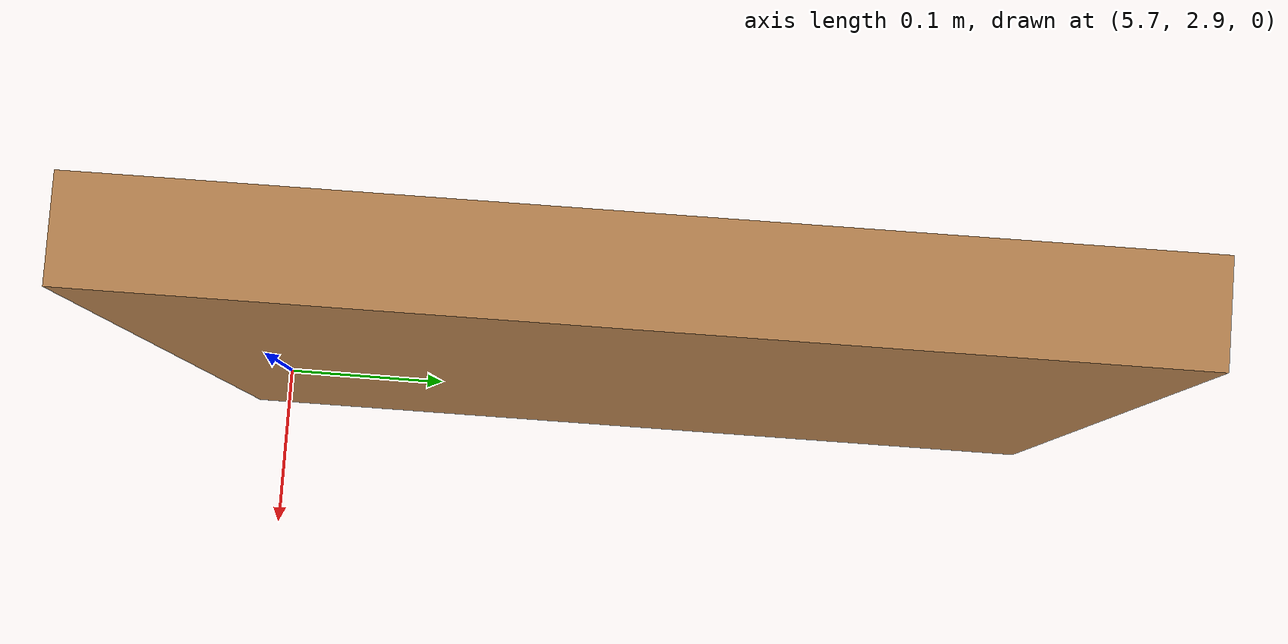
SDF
<?xml version='1.0'?>
<sdf version='1.6'>
  <model name='assignment3'>
    <pose frame=''>5.69559 3.13067 0 0 -0 0</pose>
    <link name='Wall_13'>
      <collision name='Wall_13_Collision'>
        <geometry>
          <box>
            <size>0.5 0.05 0.5</size>
          </box>
        </geometry>
        <pose frame=''>0 0 0.25 0 -0 0</pose>
      </collision>
      <visual name='Wall_13_Visual'>
        <pose frame=''>0 0 0.25 0 -0 0</pose>
        <geometry>
          <box>
            <size>0.5 0.05 0.5</size>
          </box>
        </geometry>
        <material>
          <script>
            <uri>file://media/materials/scripts/gazebo.material</uri>
            <name>Gazebo/Wood</name>
          </script>
          <ambient>1 1 1 1</ambient>
        </material>
        <meta>
          <layer>0</layer>
        </meta>
      </visual>
      <pose frame=''>0 0 0 0 -0 -1.5708</pose>
    </link>
    <static>1</static>
  </model>
</sdf>
